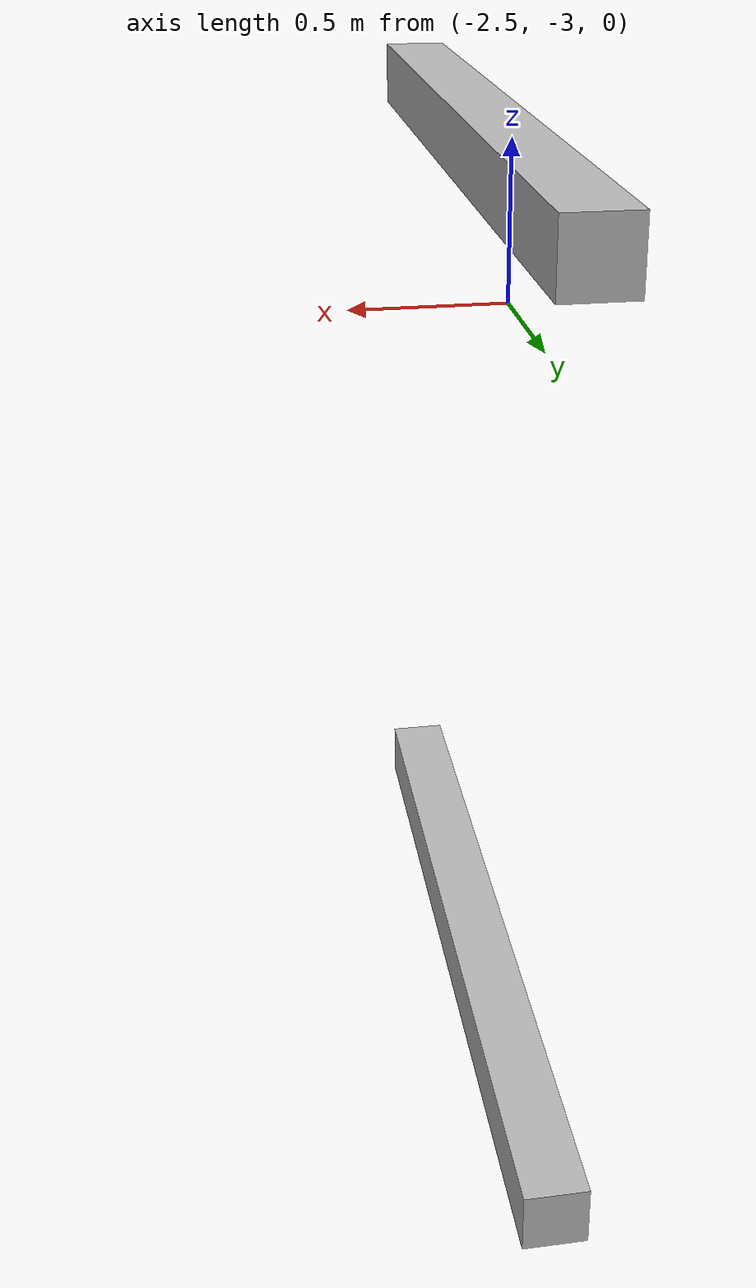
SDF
<sdf version="1.7">
 <world name="default">
  <model name="orthogonal_747_2.000.15_TS">
   <static>1</static>
   <link name="y_link_0_1_2">
    <inertial>
     <mass>1</mass>
     <inertia>
      <ixx>0.166667</ixx>
      <ixy>0</ixy>
      <ixz>0</ixz>
      <iyy>0.166667</iyy>
      <iyz>0</iyz>
      <izz>0.166667</izz>
     </inertia>
    </inertial>
    <pose>4.3 3.225 1.075 0 -0 0</pose>
    <visual name="visual_0">
     <laser_retro>211</laser_retro>
     <geometry><box><size>0.15 1e-06 0.15</size></box></geometry>
     <material>
      <script><name>Gazebo/Grey</name><uri>file://media/materials/scripts/gazebo.material</uri></script>
      <shader type="pixel"><normal_map>__default__</normal_map></shader>
      <ambient>0.678 0.498 0.659 1</ambient>
      <diffuse>0.7 0.7 0.7 1</diffuse>
      <specular>0.01 0.01 0.01 1</specular>
      <emissive>0 0 0 1</emissive>
     </material>
     <pose>0 -1 0 0 -0 0</pose>
     <transparency>1</transparency>
    </visual>
    <visual name="visual_1">
     <laser_retro>212</laser_retro>
     <geometry><box><size>0.15 1e-06 0.15</size></box></geometry>
     <material>
      <script><name>Gazebo/Grey</name><uri>file://media/materials/scripts/gazebo.material</uri></script>
      <shader type="pixel"><normal_map>__default__</normal_map></shader>
      <ambient>0.447 0.624 0.812 1</ambient>
      <diffuse>0.7 0.7 0.7 1</diffuse>
      <specular>0.01 0.01 0.01 1</specular>
      <emissive>0 0 0 1</emissive>
     </material>
     <pose>0 1 0 0 -0 0</pose>
     <transparency>1</transparency>
    </visual>
    <visual name="visual_2">
     <laser_retro>213</laser_retro>
     <geometry><box><size>0.15 2 1e-06</size></box></geometry>
     <material>
      <script><name>Gazebo/Grey</name><uri>file://media/materials/scripts/gazebo.material</uri></script>
      <shader type="pixel"><normal_map>__default__</normal_map></shader>
      <ambient>0.988 0.686 0.243 1</ambient>
      <diffuse>0.7 0.7 0.7 1</diffuse>
      <specular>0.01 0.01 0.01 1</specular>
      <emissive>0 0 0 1</emissive>
     </material>
     <pose>0 0 -0.075 0 -0 0</pose>
     <transparency>1</transparency>
    </visual>
    <visual name="visual_3">
     <laser_retro>214</laser_retro>
     <geometry><box><size>1e-06 2 0.15</size></box></geometry>
     <material>
      <script><name>Gazebo/Grey</name><uri>file://media/materials/scripts/gazebo.material</uri></script>
      <shader type="pixel"><normal_map>__default__</normal_map></shader>
      <ambient>0.988 0.914 0.31 1</ambient>
      <diffuse>0.7 0.7 0.7 1</diffuse>
      <specular>0.01 0.01 0.01 1</specular>
      <emissive>0 0 0 1</emissive>
     </material>
     <pose>0.075 0 0 0 -0 0</pose>
     <transparency>1</transparency>
    </visual>
    <visual name="visual_4">
     <laser_retro>215</laser_retro>
     <geometry><box><size>0.15 2 1e-06</size></box></geometry>
     <material>
      <script><name>Gazebo/Grey</name><uri>file://media/materials/scripts/gazebo.material</uri></script>
      <shader type="pixel"><normal_map>__default__</normal_map></shader>
      <ambient>0.937 0.161 0.161 1</ambient>
      <diffuse>0.7 0.7 0.7 1</diffuse>
      <specular>0.01 0.01 0.01 1</specular>
      <emissive>0 0 0 1</emissive>
     </material>
     <pose>0 0 0.075 0 -0 0</pose>
     <transparency>1</transparency>
    </visual>
    <visual name="visual_5">
     <laser_retro>216</laser_retro>
     <geometry><box><size>1e-06 2 0.15</size></box></geometry>
     <material>
      <script><name>Gazebo/Grey</name><uri>file://media/materials/scripts/gazebo.material</uri></script>
      <shader type="pixel"><normal_map>__default__</normal_map></shader>
      <ambient>0.541 0.886 0.204 1</ambient>
      <diffuse>0.7 0.7 0.7 1</diffuse>
      <specular>0.01 0.01 0.01 1</specular>
      <emissive>0 0 0 1</emissive>
     </material>
     <pose>-0.075 0 0 0 -0 0</pose>
     <transparency>1</transparency>
    </visual>
    <visual name="visual_texture">
     <geometry><box><size>0.149985 1.9998 0.149985</size></box></geometry>
     <material>
      <script>
       <uri>model://BASE_MODELS/simple_block_v2_textured/materials/scripts</uri>
       <uri>model://BASE_MODELS/simple_block_v2_textured/materials/textures</uri>
       <name>metal</name>
      </script>
     </material>
     <laser_retro>217</laser_retro>
    </visual>
    <collision name="collision">
     <geometry><box><size>0.15 2 0.15</size></box></geometry>
     <surface>
      <friction>
       <ode><mu>1</mu><mu2>1</mu2><fdir1>0 0 0</fdir1><slip1>0</slip1><slip2>0</slip2></ode>
       <torsional>
        <coefficient>1</coefficient>
        <patch_radius>0</patch_radius>
        <surface_radius>0</surface_radius>
        <use_patch_radius>1</use_patch_radius>
        <ode><slip>0</slip></ode>
       </torsional>
      </friction>
      <bounce><restitution_coefficient>0</restitution_coefficient><threshold>1e+06</threshold></bounce>
      <contact>
       <collide_without_contact>0</collide_without_contact>
       <collide_without_contact_bitmask>1</collide_without_contact_bitmask>
       <collide_bitmask>1</collide_bitmask>
       <ode>
        <soft_cfm>0</soft_cfm>
        <soft_erp>0.2</soft_erp>
        <kp>1e+13</kp>
        <kd>1</kd>
        <max_vel>0.01</max_vel>
        <min_depth>0</min_depth>
       </ode>
       <bullet>
        <split_impulse>1</split_impulse>
        <split_impulse_penetration_threshold>-0.01</split_impulse_penetration_threshold>
        <soft_cfm>0</soft_cfm>
        <soft_erp>0.2</soft_erp>
        <kp>1e+13</kp>
        <kd>1</kd>
       </bullet>
      </contact>
     </surface>
    </collision>
   </link>
   <link name="y_link_1_1_2">
    <inertial>
     <mass>1</mass>
     <inertia>
      <ixx>0.166667</ixx>
      <ixy>0</ixy>
      <ixz>0</ixz>
      <iyy>0.166667</iyy>
      <iyz>0</iyz>
      <izz>0.166667</izz>
     </inertia>
    </inertial>
    <pose>4.3 3.225 3.225 0 -0 0</pose>
    <visual name="visual_0">
     <laser_retro>1023</laser_retro>
     <geometry><box><size>0.15 1e-06 0.15</size></box></geometry>
     <material>
      <script><name>Gazebo/Grey</name><uri>file://media/materials/scripts/gazebo.material</uri></script>
      <shader type="pixel"><normal_map>__default__</normal_map></shader>
      <ambient>0.678 0.498 0.659 1</ambient>
      <diffuse>0.7 0.7 0.7 1</diffuse>
      <specular>0.01 0.01 0.01 1</specular>
      <emissive>0 0 0 1</emissive>
     </material>
     <pose>0 -1 0 0 -0 0</pose>
     <transparency>1</transparency>
    </visual>
    <visual name="visual_1">
     <laser_retro>1024</laser_retro>
     <geometry><box><size>0.15 1e-06 0.15</size></box></geometry>
     <material>
      <script><name>Gazebo/Grey</name><uri>file://media/materials/scripts/gazebo.material</uri></script>
      <shader type="pixel"><normal_map>__default__</normal_map></shader>
      <ambient>0.447 0.624 0.812 1</ambient>
      <diffuse>0.7 0.7 0.7 1</diffuse>
      <specular>0.01 0.01 0.01 1</specular>
      <emissive>0 0 0 1</emissive>
     </material>
     <pose>0 1 0 0 -0 0</pose>
     <transparency>1</transparency>
    </visual>
    <visual name="visual_2">
     <laser_retro>1025</laser_retro>
     <geometry><box><size>0.15 2 1e-06</size></box></geometry>
     <material>
      <script><name>Gazebo/Grey</name><uri>file://media/materials/scripts/gazebo.material</uri></script>
      <shader type="pixel"><normal_map>__default__</normal_map></shader>
      <ambient>0.988 0.686 0.243 1</ambient>
      <diffuse>0.7 0.7 0.7 1</diffuse>
      <specular>0.01 0.01 0.01 1</specular>
      <emissive>0 0 0 1</emissive>
     </material>
     <pose>0 0 -0.075 0 -0 0</pose>
     <transparency>1</transparency>
    </visual>
    <visual name="visual_3">
     <laser_retro>1026</laser_retro>
     <geometry><box><size>1e-06 2 0.15</size></box></geometry>
     <material>
      <script><name>Gazebo/Grey</name><uri>file://media/materials/scripts/gazebo.material</uri></script>
      <shader type="pixel"><normal_map>__default__</normal_map></shader>
      <ambient>0.988 0.914 0.31 1</ambient>
      <diffuse>0.7 0.7 0.7 1</diffuse>
      <specular>0.01 0.01 0.01 1</specular>
      <emissive>0 0 0 1</emissive>
     </material>
     <pose>0.075 0 0 0 -0 0</pose>
     <transparency>1</transparency>
    </visual>
    <visual name="visual_4">
     <laser_retro>1027</laser_retro>
     <geometry><box><size>0.15 2 1e-06</size></box></geometry>
     <material>
      <script><name>Gazebo/Grey</name><uri>file://media/materials/scripts/gazebo.material</uri></script>
      <shader type="pixel"><normal_map>__default__</normal_map></shader>
      <ambient>0.937 0.161 0.161 1</ambient>
      <diffuse>0.7 0.7 0.7 1</diffuse>
      <specular>0.01 0.01 0.01 1</specular>
      <emissive>0 0 0 1</emissive>
     </material>
     <pose>0 0 0.075 0 -0 0</pose>
     <transparency>1</transparency>
    </visual>
    <visual name="visual_5">
     <laser_retro>1028</laser_retro>
     <geometry><box><size>1e-06 2 0.15</size></box></geometry>
     <material>
      <script><name>Gazebo/Grey</name><uri>file://media/materials/scripts/gazebo.material</uri></script>
      <shader type="pixel"><normal_map>__default__</normal_map></shader>
      <ambient>0.541 0.886 0.204 1</ambient>
      <diffuse>0.7 0.7 0.7 1</diffuse>
      <specular>0.01 0.01 0.01 1</specular>
      <emissive>0 0 0 1</emissive>
     </material>
     <pose>-0.075 0 0 0 -0 0</pose>
     <transparency>1</transparency>
    </visual>
    <visual name="visual_texture">
     <geometry><box><size>0.149985 1.9998 0.149985</size></box></geometry>
     <material>
      <script>
       <uri>model://BASE_MODELS/simple_block_v2_textured/materials/scripts</uri>
       <uri>model://BASE_MODELS/simple_block_v2_textured/materials/textures</uri>
       <name>metal</name>
      </script>
     </material>
     <laser_retro>1029</laser_retro>
    </visual>
    <collision name="collision">
     <geometry><box><size>0.15 2 0.15</size></box></geometry>
     <surface>
      <friction>
       <ode><mu>1</mu><mu2>1</mu2><fdir1>0 0 0</fdir1><slip1>0</slip1><slip2>0</slip2></ode>
       <torsional>
        <coefficient>1</coefficient>
        <patch_radius>0</patch_radius>
        <surface_radius>0</surface_radius>
        <use_patch_radius>1</use_patch_radius>
        <ode><slip>0</slip></ode>
       </torsional>
      </friction>
      <bounce><restitution_coefficient>0</restitution_coefficient><threshold>1e+06</threshold></bounce>
      <contact>
       <collide_without_contact>0</collide_without_contact>
       <collide_without_contact_bitmask>1</collide_without_contact_bitmask>
       <collide_bitmask>1</collide_bitmask>
       <ode>
        <soft_cfm>0</soft_cfm>
        <soft_erp>0.2</soft_erp>
        <kp>1e+13</kp>
        <kd>1</kd>
        <max_vel>0.01</max_vel>
        <min_depth>0</min_depth>
       </ode>
       <bullet>
        <split_impulse>1</split_impulse>
        <split_impulse_penetration_threshold>-0.01</split_impulse_penetration_threshold>
        <soft_cfm>0</soft_cfm>
        <soft_erp>0.2</soft_erp>
        <kp>1e+13</kp>
        <kd>1</kd>
       </bullet>
      </contact>
     </surface>
    </collision>
   </link>
   <pose>-6.47624 -5 -2.5 0 -0 0</pose>
  </model>
 </world>
</sdf>
